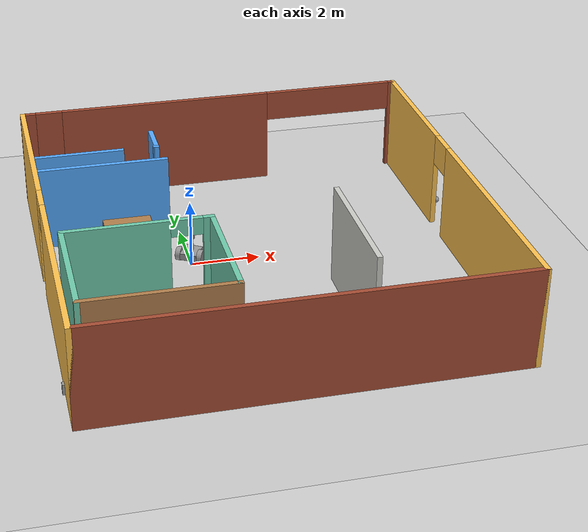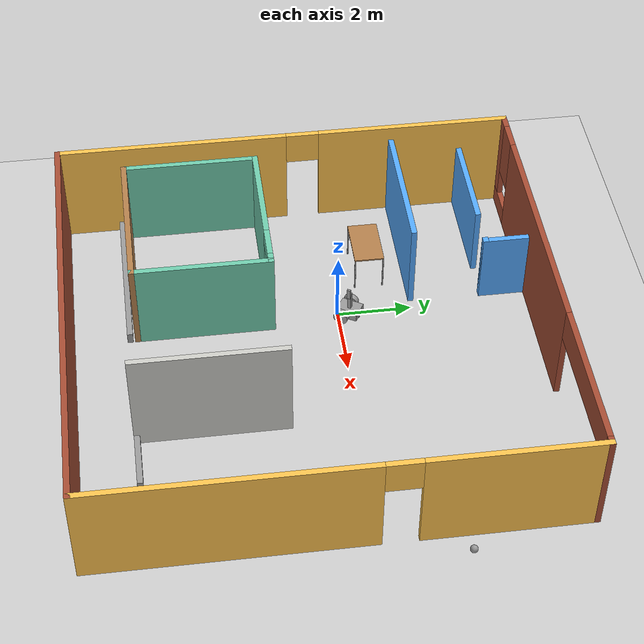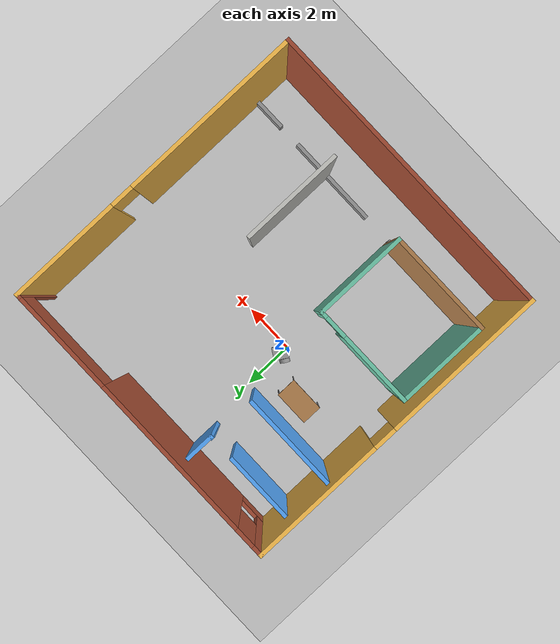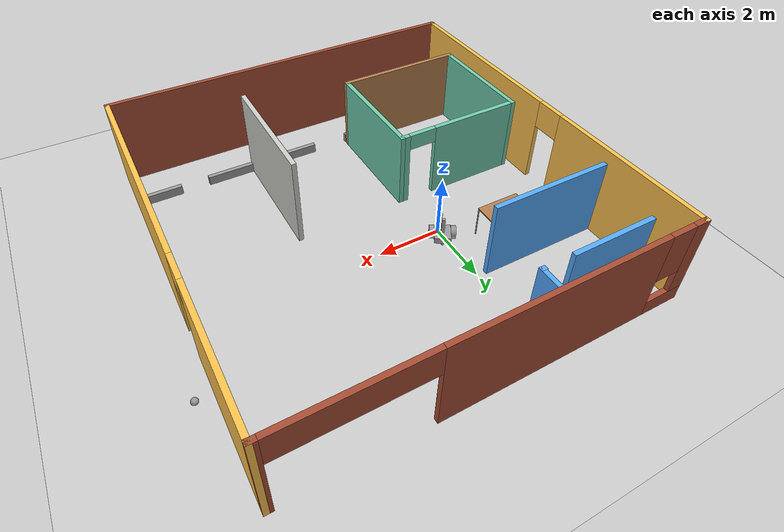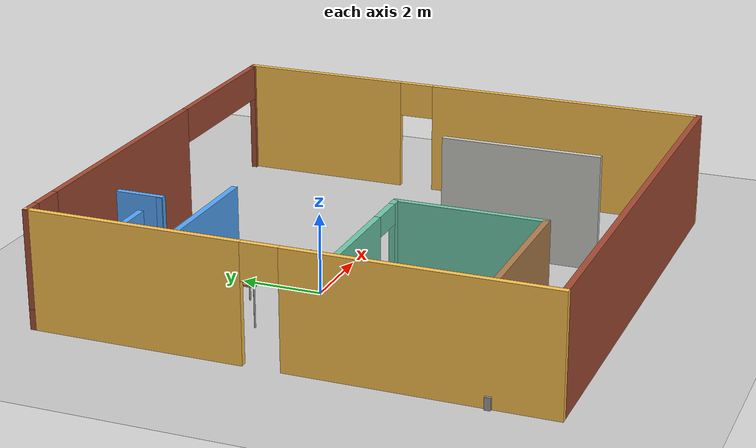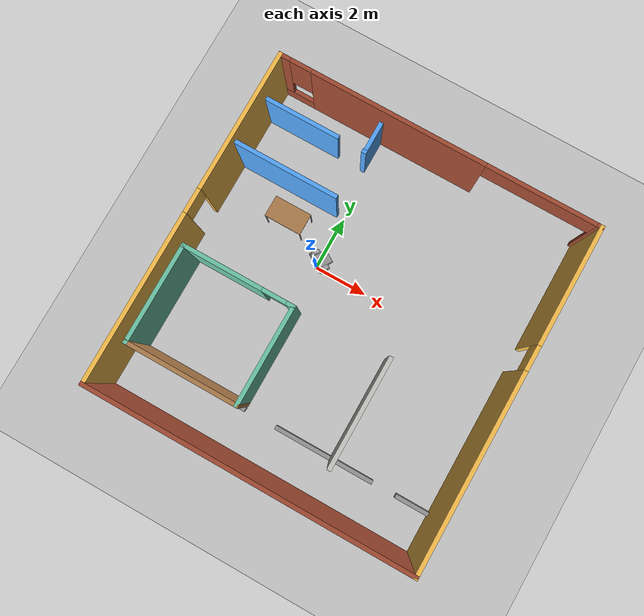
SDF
<sdf version="1.6">
 <world name="default">
  <plugin name="world_plugin" filename="libworld_plugin.so"/>
  <light name="sun" type="directional">
   <pose>0 0 10 0 -0 0</pose>
   <diffuse>0.8 0.8 0.8 1</diffuse>
   <specular>0.1 0.1 0.1 1</specular>
   <attenuation>
    <range>1000</range>
    <constant>0.9</constant>
    <linear>0.01</linear>
    <quadratic>0.001</quadratic>
   </attenuation>
   <direction>-0.5 0.5 -1</direction>
  </light>
  <model name="ground_plane">
   <static>1</static>
   <link name="link">
    <collision name="collision">
     <geometry><plane><normal>0 0 1</normal><size>100 100</size></plane></geometry>
     <surface><friction><ode><mu>100</mu><mu2>50</mu2></ode></friction></surface>
    </collision>
    <visual name="visual">
     <cast_shadows>0</cast_shadows>
     <geometry><plane><normal>0 0 1</normal><size>100 100</size></plane></geometry>
     <material>
      <script><uri>file://media/materials/scripts/gazebo.material</uri><name>Gazebo/Grey</name></script>
     </material>
    </visual>
   </link>
  </model>
  <gravity>0 0 -9.8</gravity>
  <magnetic_field>6e-06 2.3e-05 -4.2e-05</magnetic_field>
  <atmosphere type="adiabatic"/>
  <physics name="default_physics" default="0" type="ode">
   <max_step_size>0.001</max_step_size>
   <real_time_factor>1</real_time_factor>
   <real_time_update_rate>1000</real_time_update_rate>
  </physics>
  <scene><ambient>0.4 0.4 0.4 1</ambient><background>0.7 0.7 0.7 1</background><shadows>1</shadows></scene>
  <spherical_coordinates>
   <surface_model>EARTH_WGS84</surface_model>
   <latitude_deg>0</latitude_deg>
   <longitude_deg>0</longitude_deg>
   <elevation>0</elevation>
   <heading_deg>0</heading_deg>
  </spherical_coordinates>
  <model name="project_building">
   <pose>1.69629 -0.958851 0 0 -0 0</pose>
   <link name="Wall_0">
    <pose>-5.891 0 0 0 0 -1.5708</pose>
    <visual name="Wall_0_Visual_0">
     <pose>-3.61135 0 1.45 0 -0 0</pose>
     <geometry><box><size>5.2773 0.15 2.9</size></box></geometry>
     <material>
      <script><uri>file://media/materials/scripts/gazebo.material</uri><name>Gazebo/Grey</name></script>
      <ambient>1 0.764706 0.305882 1</ambient>
     </material>
    </visual>
    <collision name="Wall_0_Collision_0">
     <geometry><box><size>5.2773 0.15 2.9</size></box></geometry>
     <pose>-3.61135 0 1.45 0 -0 0</pose>
    </collision>
    <visual name="Wall_0_Visual_1">
     <pose>3.08865 0 1.45 0 -0 0</pose>
     <geometry><box><size>6.3227 0.15 2.9</size></box></geometry>
     <material>
      <script><uri>file://media/materials/scripts/gazebo.material</uri><name>Gazebo/Grey</name></script>
      <ambient>1 0.764706 0.305882 1</ambient>
     </material>
    </visual>
    <collision name="Wall_0_Collision_1">
     <geometry><box><size>6.3227 0.15 2.9</size></box></geometry>
     <pose>3.08865 0 1.45 0 -0 0</pose>
    </collision>
    <visual name="Wall_0_Visual_2">
     <pose>-0.522696 0 2.45 0 -0 0</pose>
     <geometry><box><size>0.9 0.15 0.9</size></box></geometry>
     <material>
      <script><uri>file://media/materials/scripts/gazebo.material</uri><name>Gazebo/Grey</name></script>
      <ambient>1 0.764706 0.305882 1</ambient>
     </material>
    </visual>
    <collision name="Wall_0_Collision_2">
     <geometry><box><size>0.9 0.15 0.9</size></box></geometry>
     <pose>-0.522696 0 2.45 0 -0 0</pose>
    </collision>
   </link>
   <link name="Wall_1">
    <collision name="Wall_1_Collision">
     <geometry><box><size>12 0.15 2.9</size></box></geometry>
     <pose>0 0 1.45 0 -0 0</pose>
    </collision>
    <visual name="Wall_1_Visual">
     <pose>0 0 1.45 0 -0 0</pose>
     <geometry><box><size>12 0.15 2.9</size></box></geometry>
     <material>
      <script><uri>file://media/materials/scripts/gazebo.material</uri><name>Gazebo/Bricks</name></script>
      <ambient>1 0.764706 0.305882 1</ambient>
     </material>
    </visual>
    <pose>0.034 -6.175 0 0 -0 0</pose>
   </link>
   <link name="Wall_10">
    <pose>-3.46528 -0.832081 0 0 -0 0</pose>
    <visual name="Wall_10_Visual_0">
     <pose>-0.615 0 1.25 0 -0 0</pose>
     <geometry><box><size>3.02 0.15 2.5</size></box></geometry>
     <material>
      <script><uri>file://media/materials/scripts/gazebo.material</uri><name>Gazebo/Grey</name></script>
      <ambient>0.435294 0.796078 0.67451 1</ambient>
     </material>
    </visual>
    <collision name="Wall_10_Collision_0">
     <geometry><box><size>3.02 0.15 2.5</size></box></geometry>
     <pose>-0.615 0 1.25 0 -0 0</pose>
    </collision>
    <visual name="Wall_10_Visual_1">
     <pose>1.96 0 1.25 0 -0 0</pose>
     <geometry><box><size>0.329999 0.15 2.5</size></box></geometry>
     <material>
      <script><uri>file://media/materials/scripts/gazebo.material</uri><name>Gazebo/Grey</name></script>
      <ambient>0.435294 0.796078 0.67451 1</ambient>
     </material>
    </visual>
    <collision name="Wall_10_Collision_1">
     <geometry><box><size>0.329999 0.15 2.5</size></box></geometry>
     <pose>1.96 0 1.25 0 -0 0</pose>
    </collision>
    <visual name="Wall_10_Visual_2">
     <pose>1.345 0 2.25 0 -0 0</pose>
     <geometry><box><size>0.9 0.15 0.5</size></box></geometry>
     <material>
      <script><uri>file://media/materials/scripts/gazebo.material</uri><name>Gazebo/Grey</name></script>
      <ambient>0.435294 0.796078 0.67451 1</ambient>
     </material>
    </visual>
    <collision name="Wall_10_Collision_2">
     <geometry><box><size>0.9 0.15 0.5</size></box></geometry>
     <pose>1.345 0 2.25 0 -0 0</pose>
    </collision>
   </link>
   <link name="Wall_11">
    <collision name="Wall_11_Collision">
     <geometry><box><size>3.75 0.15 2.5</size></box></geometry>
     <pose>0 0 1.25 0 -0 0</pose>
    </collision>
    <visual name="Wall_11_Visual">
     <pose>0 0 1.25 0 -0 0</pose>
     <geometry><box><size>3.75 0.15 2.5</size></box></geometry>
     <material>
      <script><uri>file://media/materials/scripts/gazebo.material</uri><name>Gazebo/Grey</name></script>
      <ambient>0.435294 0.796078 0.67451 1</ambient>
     </material>
    </visual>
    <pose>-1.41528 -2.63208 0 0 0 -1.5708</pose>
   </link>
   <link name="Wall_12">
    <collision name="Wall_12_Collision">
     <geometry><box><size>4.25 0.15 2.5</size></box></geometry>
     <pose>0 0 1.25 0 -0 0</pose>
    </collision>
    <visual name="Wall_12_Visual">
     <pose>0 0 1.25 0 -0 0</pose>
     <geometry><box><size>4.25 0.15 2.5</size></box></geometry>
     <material>
      <script><uri>file://media/materials/scripts/gazebo.material</uri><name>Gazebo/Wood</name></script>
      <ambient>0.435294 0.796078 0.67451 1</ambient>
     </material>
    </visual>
    <pose>-3.46528 -4.43208 0 0 -0 3.14159</pose>
   </link>
   <link name="Wall_14">
    <collision name="Wall_14_Collision">
     <geometry><box><size>4 0.15 2.9</size></box></geometry>
     <pose>0 0 1.45 0 -0 0</pose>
    </collision>
    <visual name="Wall_14_Visual">
     <pose>0 0 1.45 0 -0 0</pose>
     <geometry><box><size>4 0.15 2.9</size></box></geometry>
     <material>
      <script><uri>file://media/materials/scripts/gazebo.material</uri><name>Gazebo/CeilingTiled</name></script>
      <ambient>0.333333 0.666667 1 1</ambient>
     </material>
    </visual>
    <pose>2.097 -2.712 0 0 -0 1.5708</pose>
   </link>
   <link name="Wall_17">
    <collision name="Wall_17_Collision">
     <geometry><box><size>4 0.15 2.5</size></box></geometry>
     <pose>0 0 1.25 0 -0 0</pose>
    </collision>
    <visual name="Wall_17_Visual">
     <pose>0 0 1.25 0 -0 0</pose>
     <geometry><box><size>4 0.15 2.5</size></box></geometry>
     <material>
      <script><uri>file://media/materials/scripts/gazebo.material</uri><name>Gazebo/Grey</name></script>
      <ambient>0.333333 0.666667 1 1</ambient>
     </material>
    </visual>
    <pose>-3.95814 2.99601 0 0 -0 0</pose>
   </link>
   <link name="Wall_19">
    <pose>-3.912 4.939 0 0 -0 0</pose>
    <visual name="Wall_19_Visual_0">
     <pose>-0.54194 0 1 0 -0 0</pose>
     <geometry><box><size>2.91612 0.15 2</size></box></geometry>
     <material>
      <script><uri>file://media/materials/scripts/gazebo.material</uri><name>Gazebo/Grey</name></script>
      <ambient>0.333333 0.666667 1 1</ambient>
     </material>
    </visual>
    <collision name="Wall_19_Collision_0">
     <geometry><box><size>2.91612 0.15 2</size></box></geometry>
     <pose>-0.54194 0 1 0 -0 0</pose>
    </collision>
    <visual name="Wall_19_Visual_1">
     <pose>1.90806 0 1 0 -0 0</pose>
     <geometry><box><size>0.18388 0.15 2</size></box></geometry>
     <material>
      <script><uri>file://media/materials/scripts/gazebo.material</uri><name>Gazebo/Grey</name></script>
      <ambient>0.333333 0.666667 1 1</ambient>
     </material>
    </visual>
    <collision name="Wall_19_Collision_1">
     <geometry><box><size>0.18388 0.15 2</size></box></geometry>
     <pose>1.90806 0 1 0 -0 0</pose>
    </collision>
   </link>
   <link name="Wall_2">
    <pose>5.959 0 0 0 -0 1.5708</pose>
    <visual name="Wall_2_Visual_0">
     <pose>-2.64975 0 1.45 0 -0 0</pose>
     <geometry><box><size>7.2005 0.15 2.9</size></box></geometry>
     <material>
      <script><uri>file://media/materials/scripts/gazebo.material</uri><name>Gazebo/Grey</name></script>
      <ambient>1 0.764706 0.305882 1</ambient>
     </material>
    </visual>
    <collision name="Wall_2_Collision_0">
     <geometry><box><size>7.2005 0.15 2.9</size></box></geometry>
     <pose>-2.64975 0 1.45 0 -0 0</pose>
    </collision>
    <visual name="Wall_2_Visual_1">
     <pose>4.05025 0 1.45 0 -0 0</pose>
     <geometry><box><size>4.3995 0.15 2.9</size></box></geometry>
     <material>
      <script><uri>file://media/materials/scripts/gazebo.material</uri><name>Gazebo/Grey</name></script>
      <ambient>1 0.764706 0.305882 1</ambient>
     </material>
    </visual>
    <collision name="Wall_2_Collision_1">
     <geometry><box><size>4.3995 0.15 2.9</size></box></geometry>
     <pose>4.05025 0 1.45 0 -0 0</pose>
    </collision>
    <visual name="Wall_2_Visual_2">
     <pose>1.4005 0 2.45 0 -0 0</pose>
     <geometry><box><size>0.9 0.15 0.9</size></box></geometry>
     <material>
      <script><uri>file://media/materials/scripts/gazebo.material</uri><name>Gazebo/Grey</name></script>
      <ambient>1 0.764706 0.305882 1</ambient>
     </material>
    </visual>
    <collision name="Wall_2_Collision_2">
     <geometry><box><size>0.9 0.15 0.9</size></box></geometry>
     <pose>1.4005 0 2.45 0 -0 0</pose>
    </collision>
   </link>
   <link name="Wall_20">
    <collision name="Wall_20_Collision">
     <geometry><box><size>1.25 0.15 2</size></box></geometry>
     <pose>0 0 1 0 -0 0</pose>
    </collision>
    <visual name="Wall_20_Visual">
     <pose>0 0 1 0 -0 0</pose>
     <geometry><box><size>1.25 0.15 2</size></box></geometry>
     <material>
      <script><uri>file://media/materials/scripts/gazebo.material</uri><name>Gazebo/Grey</name></script>
      <ambient>0.333333 0.666667 1 1</ambient>
     </material>
    </visual>
    <pose>-1.987 5.489 0 0 -0 1.5708</pose>
   </link>
   <link name="Wall_22">
    <pose>-0.034 -4.632 0 0 -0 0</pose>
    <visual name="Wall_22_Visual_0">
     <pose>-3.65467 0 0.15 0 -0 0</pose>
     <geometry><box><size>4.69066 0.15 0.3</size></box></geometry>
     <material>
      <script><uri>file://media/materials/scripts/gazebo.material</uri><name>Gazebo/Grey</name></script>
      <ambient>0.372549 0.376471 0.388235 1</ambient>
     </material>
    </visual>
    <collision name="Wall_22_Collision_0">
     <geometry><box><size>4.69066 0.15 0.3</size></box></geometry>
     <pose>-3.65467 0 0.15 0 -0 0</pose>
    </collision>
    <visual name="Wall_22_Visual_1">
     <pose>1.81175 0 0.15 0 -0 0</pose>
     <geometry><box><size>3.84218 0.15 0.3</size></box></geometry>
     <material>
      <script><uri>file://media/materials/scripts/gazebo.material</uri><name>Gazebo/Grey</name></script>
      <ambient>0.372549 0.376471 0.388235 1</ambient>
     </material>
    </visual>
    <collision name="Wall_22_Collision_1">
     <geometry><box><size>3.84218 0.15 0.3</size></box></geometry>
     <pose>1.81175 0 0.15 0 -0 0</pose>
    </collision>
    <visual name="Wall_22_Visual_2">
     <pose>5.31642 0 0.15 0 -0 0</pose>
     <geometry><box><size>1.36715 0.15 0.3</size></box></geometry>
     <material>
      <script><uri>file://media/materials/scripts/gazebo.material</uri><name>Gazebo/Grey</name></script>
      <ambient>0.372549 0.376471 0.388235 1</ambient>
     </material>
    </visual>
    <collision name="Wall_22_Collision_2">
     <geometry><box><size>1.36715 0.15 0.3</size></box></geometry>
     <pose>5.31642 0 0.15 0 -0 0</pose>
    </collision>
   </link>
   <link name="Wall_3">
    <pose>0.034 6.175 0 0 -0 3.14159</pose>
    <visual name="Wall_3_Visual_0">
     <pose>-5.87548 0 1.45 0 -0 0</pose>
     <geometry><box><size>0.249032 0.15 2.9</size></box></geometry>
     <material>
      <script><uri>file://media/materials/scripts/gazebo.material</uri><name>Gazebo/Bricks</name></script>
      <ambient>1 0.764706 0.305882 1</ambient>
     </material>
    </visual>
    <collision name="Wall_3_Collision_0">
     <geometry><box><size>0.249032 0.15 2.9</size></box></geometry>
     <pose>-5.87548 0 1.45 0 -0 0</pose>
    </collision>
    <visual name="Wall_3_Visual_1">
     <pose>1.49127 0 1.45 0 -0 0</pose>
     <geometry><box><size>6.48447 0.15 2.9</size></box></geometry>
     <material>
      <script><uri>file://media/materials/scripts/gazebo.material</uri><name>Gazebo/Bricks</name></script>
      <ambient>1 0.764706 0.305882 1</ambient>
     </material>
    </visual>
    <collision name="Wall_3_Collision_1">
     <geometry><box><size>6.48447 0.15 2.9</size></box></geometry>
     <pose>1.49127 0 1.45 0 -0 0</pose>
    </collision>
    <visual name="Wall_3_Visual_2">
     <pose>5.36675 0 0.25 0 -0 0</pose>
     <geometry><box><size>1.2665 0.15 0.5</size></box></geometry>
     <material>
      <script><uri>file://media/materials/scripts/gazebo.material</uri><name>Gazebo/Bricks</name></script>
      <ambient>1 0.764706 0.305882 1</ambient>
     </material>
    </visual>
    <collision name="Wall_3_Collision_2">
     <geometry><box><size>1.2665 0.15 0.5</size></box></geometry>
     <pose>5.36675 0 0.25 0 -0 0</pose>
    </collision>
    <visual name="Wall_3_Visual_3">
     <pose>5.76675 0 1.7 0 -0 0</pose>
     <geometry><box><size>0.466501 0.15 2.4</size></box></geometry>
     <material>
      <script><uri>file://media/materials/scripts/gazebo.material</uri><name>Gazebo/Bricks</name></script>
      <ambient>1 0.764706 0.305882 1</ambient>
     </material>
    </visual>
    <collision name="Wall_3_Collision_3">
     <geometry><box><size>0.466501 0.15 2.4</size></box></geometry>
     <pose>5.76675 0 1.7 0 -0 0</pose>
    </collision>
    <visual name="Wall_3_Visual_4">
     <pose>5.1335 0 2.1 0 -0 0</pose>
     <geometry><box><size>0.8 0.15 1.6</size></box></geometry>
     <material>
      <script><uri>file://media/materials/scripts/gazebo.material</uri><name>Gazebo/Bricks</name></script>
      <ambient>1 0.764706 0.305882 1</ambient>
     </material>
    </visual>
    <collision name="Wall_3_Collision_4">
     <geometry><box><size>0.8 0.15 1.6</size></box></geometry>
     <pose>5.1335 0 2.1 0 -0 0</pose>
    </collision>
    <visual name="Wall_3_Visual_5">
     <pose>-3.75097 0 2.45 0 -0 0</pose>
     <geometry><box><size>4 0.15 0.9</size></box></geometry>
     <material>
      <script><uri>file://media/materials/scripts/gazebo.material</uri><name>Gazebo/Bricks</name></script>
      <ambient>1 0.764706 0.305882 1</ambient>
     </material>
    </visual>
    <collision name="Wall_3_Collision_5">
     <geometry><box><size>4 0.15 0.9</size></box></geometry>
     <pose>-3.75097 0 2.45 0 -0 0</pose>
    </collision>
   </link>
   <link name="Wall_9">
    <collision name="Wall_9_Collision">
     <geometry><box><size>3.75 0.15 2.5</size></box></geometry>
     <pose>0 0 1.25 0 -0 0</pose>
    </collision>
    <visual name="Wall_9_Visual">
     <pose>0 0 1.25 0 -0 0</pose>
     <geometry><box><size>3.75 0.15 2.5</size></box></geometry>
     <material>
      <script><uri>file://media/materials/scripts/gazebo.material</uri><name>Gazebo/Grey</name></script>
      <ambient>0.435294 0.796078 0.67451 1</ambient>
     </material>
    </visual>
    <pose>-5.51528 -2.63208 0 0 -0 1.5708</pose>
   </link>
   <static>1</static>
  </model>
  <model name="project_robot">
   <link name="link_0">
    <pose>-0.0125 -0.008336 -0.141667 0 -0 0</pose>
    <inertial>
     <mass>1</mass>
     <inertia>
      <ixx>0.166667</ixx>
      <ixy>0</ixy>
      <ixz>0</ixz>
      <iyy>0.166667</iyy>
      <iyz>0</iyz>
      <izz>0.166667</izz>
     </inertia>
    </inertial>
    <visual name="visual">
     <geometry><box><size>0.5 0.6 0.2</size></box></geometry>
     <material>
      <lighting>1</lighting>
      <script><uri>file://media/materials/scripts/gazebo.material</uri><name>Gazebo/Grey</name></script>
      <ambient>0.3 0.3 0.3 1</ambient>
      <diffuse>0.7 0.7 0.7 1</diffuse>
      <specular>0.01 0.01 0.01 1</specular>
      <emissive>0 0 0 1</emissive>
      <shader type="vertex"><normal_map>__default__</normal_map></shader>
     </material>
    </visual>
    <collision name="collision">
     <geometry><box><size>0.5 0.6 0.2</size></box></geometry>
     <surface>
      <friction>
       <ode><mu>1</mu><mu2>1</mu2><fdir1>0 0 0</fdir1><slip1>0</slip1><slip2>0</slip2></ode>
       <torsional>
        <coefficient>1</coefficient>
        <patch_radius>0</patch_radius>
        <surface_radius>0</surface_radius>
        <use_patch_radius>1</use_patch_radius>
        <ode><slip>0</slip></ode>
       </torsional>
      </friction>
      <bounce><restitution_coefficient>0</restitution_coefficient><threshold>1e+06</threshold></bounce>
      <contact>
       <collide_without_contact>0</collide_without_contact>
       <collide_without_contact_bitmask>1</collide_without_contact_bitmask>
       <collide_bitmask>1</collide_bitmask>
       <ode>
        <soft_cfm>0</soft_cfm>
        <soft_erp>0.2</soft_erp>
        <kp>1e+13</kp>
        <kd>1</kd>
        <max_vel>0.01</max_vel>
        <min_depth>0</min_depth>
       </ode>
       <bullet>
        <split_impulse>1</split_impulse>
        <split_impulse_penetration_threshold>-0.01</split_impulse_penetration_threshold>
        <soft_cfm>0</soft_cfm>
        <soft_erp>0.2</soft_erp>
        <kp>1e+13</kp>
        <kd>1</kd>
       </bullet>
      </contact>
     </surface>
    </collision>
   </link>
   <link name="link_1_clone">
    <pose>-0.337539 -0.108328 -0.141667 1.5707 0 1.5707</pose>
    <inertial>
     <mass>1</mass>
     <inertia><ixx>0.145833</ixx><ixy>0</ixy><ixz>0</ixz><iyy>0.145833</iyy><iyz>0</iyz><izz>0.125</izz></inertia>
    </inertial>
    <visual name="visual">
     <geometry><cylinder><radius>0.2</radius><length>0.15</length></cylinder></geometry>
     <material>
      <lighting>1</lighting>
      <script><uri>file://media/materials/scripts/gazebo.material</uri><name>Gazebo/Grey</name></script>
      <ambient>0.3 0.3 0.3 1</ambient>
      <diffuse>0.7 0.7 0.7 1</diffuse>
      <specular>0.01 0.01 0.01 1</specular>
      <emissive>0 0 0 1</emissive>
      <shader type="vertex"><normal_map>__default__</normal_map></shader>
     </material>
    </visual>
    <collision name="collision">
     <geometry><cylinder><radius>0.2</radius><length>0.15</length></cylinder></geometry>
     <surface>
      <friction>
       <ode><mu>1</mu><mu2>1</mu2><fdir1>0 0 0</fdir1><slip1>0</slip1><slip2>0</slip2></ode>
       <torsional>
        <coefficient>1</coefficient>
        <patch_radius>0</patch_radius>
        <surface_radius>0</surface_radius>
        <use_patch_radius>1</use_patch_radius>
        <ode><slip>0</slip></ode>
       </torsional>
      </friction>
      <bounce><restitution_coefficient>0</restitution_coefficient><threshold>1e+06</threshold></bounce>
      <contact>
       <collide_without_contact>0</collide_without_contact>
       <collide_without_contact_bitmask>1</collide_without_contact_bitmask>
       <collide_bitmask>1</collide_bitmask>
       <ode>
        <soft_cfm>0</soft_cfm>
        <soft_erp>0.2</soft_erp>
        <kp>1e+13</kp>
        <kd>1</kd>
        <max_vel>0.01</max_vel>
        <min_depth>0</min_depth>
       </ode>
       <bullet>
        <split_impulse>1</split_impulse>
        <split_impulse_penetration_threshold>-0.01</split_impulse_penetration_threshold>
        <soft_cfm>0</soft_cfm>
        <soft_erp>0.2</soft_erp>
        <kp>1e+13</kp>
        <kd>1</kd>
       </bullet>
      </contact>
     </surface>
    </collision>
   </link>
   <link name="link_1_clone_clone">
    <pose>0.312539 -0.108328 -0.141667 1.5707 0 1.5707</pose>
    <inertial>
     <mass>1</mass>
     <inertia><ixx>0.145833</ixx><ixy>0</ixy><ixz>0</ixz><iyy>0.145833</iyy><iyz>0</iyz><izz>0.125</izz></inertia>
    </inertial>
    <visual name="visual">
     <geometry><cylinder><radius>0.2</radius><length>0.15</length></cylinder></geometry>
     <material>
      <lighting>1</lighting>
      <script><uri>file://media/materials/scripts/gazebo.material</uri><name>Gazebo/Grey</name></script>
      <ambient>0.3 0.3 0.3 1</ambient>
      <diffuse>0.7 0.7 0.7 1</diffuse>
      <specular>0.01 0.01 0.01 1</specular>
      <emissive>0 0 0 1</emissive>
      <shader type="vertex"><normal_map>__default__</normal_map></shader>
     </material>
    </visual>
    <collision name="collision">
     <geometry><cylinder><radius>0.2</radius><length>0.15</length></cylinder></geometry>
     <surface>
      <friction>
       <ode><mu>1</mu><mu2>1</mu2><fdir1>0 0 0</fdir1><slip1>0</slip1><slip2>0</slip2></ode>
       <torsional>
        <coefficient>1</coefficient>
        <patch_radius>0</patch_radius>
        <surface_radius>0</surface_radius>
        <use_patch_radius>1</use_patch_radius>
        <ode><slip>0</slip></ode>
       </torsional>
      </friction>
      <bounce><restitution_coefficient>0</restitution_coefficient><threshold>1e+06</threshold></bounce>
      <contact>
       <collide_without_contact>0</collide_without_contact>
       <collide_without_contact_bitmask>1</collide_without_contact_bitmask>
       <collide_bitmask>1</collide_bitmask>
       <ode>
        <soft_cfm>0</soft_cfm>
        <soft_erp>0.2</soft_erp>
        <kp>1e+13</kp>
        <kd>1</kd>
        <max_vel>0.01</max_vel>
        <min_depth>0</min_depth>
       </ode>
       <bullet>
        <split_impulse>1</split_impulse>
        <split_impulse_penetration_threshold>-0.01</split_impulse_penetration_threshold>
        <soft_cfm>0</soft_cfm>
        <soft_erp>0.2</soft_erp>
        <kp>1e+13</kp>
        <kd>1</kd>
       </bullet>
      </contact>
     </surface>
    </collision>
   </link>
   <link name="link_2">
    <pose>-0.0125 0.241664 -0.291667 0 -0 0</pose>
    <inertial>
     <mass>1</mass>
     <inertia><ixx>0.1</ixx><ixy>0</ixy><ixz>0</ixz><iyy>0.1</iyy><iyz>0</iyz><izz>0.1</izz></inertia>
    </inertial>
    <visual name="visual">
     <geometry><sphere><radius>0.05</radius></sphere></geometry>
     <material>
      <lighting>1</lighting>
      <script><uri>file://media/materials/scripts/gazebo.material</uri><name>Gazebo/Grey</name></script>
      <ambient>0.3 0.3 0.3 1</ambient>
      <diffuse>0.7 0.7 0.7 1</diffuse>
      <specular>0.01 0.01 0.01 1</specular>
      <emissive>0 0 0 1</emissive>
      <shader type="vertex"><normal_map>__default__</normal_map></shader>
     </material>
    </visual>
    <collision name="collision">
     <geometry><sphere><radius>0.05</radius></sphere></geometry>
     <surface>
      <friction>
       <ode><mu>1</mu><mu2>1</mu2><fdir1>0 0 0</fdir1><slip1>0</slip1><slip2>0</slip2></ode>
       <torsional>
        <coefficient>1</coefficient>
        <patch_radius>0</patch_radius>
        <surface_radius>0</surface_radius>
        <use_patch_radius>1</use_patch_radius>
        <ode><slip>0</slip></ode>
       </torsional>
      </friction>
      <bounce><restitution_coefficient>0</restitution_coefficient><threshold>1e+06</threshold></bounce>
      <contact>
       <collide_without_contact>0</collide_without_contact>
       <collide_without_contact_bitmask>1</collide_without_contact_bitmask>
       <collide_bitmask>1</collide_bitmask>
       <ode>
        <soft_cfm>0</soft_cfm>
        <soft_erp>0.2</soft_erp>
        <kp>1e+13</kp>
        <kd>1</kd>
        <max_vel>0.01</max_vel>
        <min_depth>0</min_depth>
       </ode>
       <bullet>
        <split_impulse>1</split_impulse>
        <split_impulse_penetration_threshold>-0.01</split_impulse_penetration_threshold>
        <soft_cfm>0</soft_cfm>
        <soft_erp>0.2</soft_erp>
        <kp>1e+13</kp>
        <kd>1</kd>
       </bullet>
      </contact>
     </surface>
    </collision>
   </link>
   <link name="link_3">
    <pose>-0.0125 -0.008336 0.208333 0 -0 0</pose>
    <inertial>
     <mass>1</mass>
     <inertia>
      <ixx>0.166667</ixx>
      <ixy>0</ixy>
      <ixz>0</ixz>
      <iyy>0.166667</iyy>
      <iyz>0</iyz>
      <izz>0.166667</izz>
     </inertia>
    </inertial>
    <visual name="visual">
     <geometry><box><size>0.1 0.1 0.5</size></box></geometry>
     <material>
      <lighting>1</lighting>
      <script><uri>file://media/materials/scripts/gazebo.material</uri><name>Gazebo/Grey</name></script>
      <ambient>0.3 0.3 0.3 1</ambient>
      <diffuse>0.7 0.7 0.7 1</diffuse>
      <specular>0.01 0.01 0.01 1</specular>
      <emissive>0 0 0 1</emissive>
      <shader type="vertex"><normal_map>__default__</normal_map></shader>
     </material>
    </visual>
    <collision name="collision">
     <geometry><box><size>0.1 0.1 0.5</size></box></geometry>
     <surface>
      <friction>
       <ode><mu>1</mu><mu2>1</mu2><fdir1>0 0 0</fdir1><slip1>0</slip1><slip2>0</slip2></ode>
       <torsional>
        <coefficient>1</coefficient>
        <patch_radius>0</patch_radius>
        <surface_radius>0</surface_radius>
        <use_patch_radius>1</use_patch_radius>
        <ode><slip>0</slip></ode>
       </torsional>
      </friction>
      <bounce><restitution_coefficient>0</restitution_coefficient><threshold>1e+06</threshold></bounce>
      <contact>
       <collide_without_contact>0</collide_without_contact>
       <collide_without_contact_bitmask>1</collide_without_contact_bitmask>
       <collide_bitmask>1</collide_bitmask>
       <ode>
        <soft_cfm>0</soft_cfm>
        <soft_erp>0.2</soft_erp>
        <kp>1e+13</kp>
        <kd>1</kd>
        <max_vel>0.01</max_vel>
        <min_depth>0</min_depth>
       </ode>
       <bullet>
        <split_impulse>1</split_impulse>
        <split_impulse_penetration_threshold>-0.01</split_impulse_penetration_threshold>
        <soft_cfm>0</soft_cfm>
        <soft_erp>0.2</soft_erp>
        <kp>1e+13</kp>
        <kd>1</kd>
       </bullet>
      </contact>
     </surface>
    </collision>
   </link>
   <link name="link_3_clone">
    <pose>0.0625 -0.008336 0.508333 0 -0 0</pose>
    <inertial>
     <mass>1</mass>
     <inertia>
      <ixx>0.166667</ixx>
      <ixy>0</ixy>
      <ixz>0</ixz>
      <iyy>0.166667</iyy>
      <iyz>0</iyz>
      <izz>0.166667</izz>
     </inertia>
    </inertial>
    <visual name="visual">
     <geometry><box><size>0.05 0.1 0.3</size></box></geometry>
     <material>
      <lighting>1</lighting>
      <script><uri>file://media/materials/scripts/gazebo.material</uri><name>Gazebo/Grey</name></script>
      <ambient>0.3 0.3 0.3 1</ambient>
      <diffuse>0.7 0.7 0.7 1</diffuse>
      <specular>0.01 0.01 0.01 1</specular>
      <emissive>0 0 0 1</emissive>
      <shader type="vertex"><normal_map>__default__</normal_map></shader>
     </material>
    </visual>
    <collision name="collision">
     <geometry><box><size>0.05 0.1 0.3</size></box></geometry>
     <surface>
      <friction>
       <ode><mu>1</mu><mu2>1</mu2><fdir1>0 0 0</fdir1><slip1>0</slip1><slip2>0</slip2></ode>
       <torsional>
        <coefficient>1</coefficient>
        <patch_radius>0</patch_radius>
        <surface_radius>0</surface_radius>
        <use_patch_radius>1</use_patch_radius>
        <ode><slip>0</slip></ode>
       </torsional>
      </friction>
      <bounce><restitution_coefficient>0</restitution_coefficient><threshold>1e+06</threshold></bounce>
      <contact>
       <collide_without_contact>0</collide_without_contact>
       <collide_without_contact_bitmask>1</collide_without_contact_bitmask>
       <collide_bitmask>1</collide_bitmask>
       <ode>
        <soft_cfm>0</soft_cfm>
        <soft_erp>0.2</soft_erp>
        <kp>1e+13</kp>
        <kd>1</kd>
        <max_vel>0.01</max_vel>
        <min_depth>0</min_depth>
       </ode>
       <bullet>
        <split_impulse>1</split_impulse>
        <split_impulse_penetration_threshold>-0.01</split_impulse_penetration_threshold>
        <soft_cfm>0</soft_cfm>
        <soft_erp>0.2</soft_erp>
        <kp>1e+13</kp>
        <kd>1</kd>
       </bullet>
      </contact>
     </surface>
    </collision>
   </link>
   <joint name="link_0_JOINT_2" type="revolute">
    <parent>link_0</parent>
    <child>link_1_clone</child>
    <axis>
     <xyz>0 0 -1</xyz>
     <use_parent_model_frame>0</use_parent_model_frame>
     <limit>
      <lower>-1.79769e+308</lower>
      <upper>1.79769e+308</upper>
      <effort>-1</effort>
      <velocity>-1</velocity>
     </limit>
     <dynamics>
      <spring_reference>0</spring_reference>
      <spring_stiffness>0</spring_stiffness>
      <damping>0</damping>
     </dynamics>
    </axis>
    <physics>
     <ode><limit><cfm>0</cfm><erp>0.2</erp></limit><suspension><cfm>0</cfm><erp>0.2</erp></suspension></ode>
    </physics>
   </joint>
   <joint name="link_0_JOINT_3" type="revolute">
    <parent>link_0</parent>
    <child>link_1_clone_clone</child>
    <axis>
     <xyz>0 0 1</xyz>
     <use_parent_model_frame>0</use_parent_model_frame>
     <limit>
      <lower>-1.79769e+308</lower>
      <upper>1.79769e+308</upper>
      <effort>-1</effort>
      <velocity>-1</velocity>
     </limit>
     <dynamics>
      <spring_reference>0</spring_reference>
      <spring_stiffness>0</spring_stiffness>
      <damping>0</damping>
     </dynamics>
    </axis>
    <physics>
     <ode><limit><cfm>0</cfm><erp>0.2</erp></limit><suspension><cfm>0</cfm><erp>0.2</erp></suspension></ode>
    </physics>
   </joint>
   <joint name="link_0_JOINT_4" type="ball">
    <parent>link_0</parent>
    <child>link_2</child>
    <physics>
     <ode><limit><cfm>0</cfm><erp>0.2</erp></limit><suspension><cfm>0</cfm><erp>0.2</erp></suspension></ode>
    </physics>
   </joint>
   <joint name="link_0_JOINT_5" type="fixed">
    <parent>link_0</parent>
    <child>link_3</child>
    <physics>
     <ode><limit><cfm>0</cfm><erp>0.2</erp></limit><suspension><cfm>0</cfm><erp>0.2</erp></suspension></ode>
    </physics>
   </joint>
   <joint name="link_3_JOINT_6" type="revolute">
    <parent>link_3</parent>
    <child>link_3_clone</child>
    <pose>0 0 -0.1 0 -0 0</pose>
    <axis>
     <xyz>1 0 0</xyz>
     <use_parent_model_frame>0</use_parent_model_frame>
     <limit>
      <lower>-1.79769e+308</lower>
      <upper>1.79769e+308</upper>
      <effort>-1</effort>
      <velocity>-1</velocity>
     </limit>
     <dynamics>
      <spring_reference>0</spring_reference>
      <spring_stiffness>0</spring_stiffness>
      <damping>0</damping>
     </dynamics>
    </axis>
    <physics>
     <ode><limit><cfm>0</cfm><erp>0.2</erp></limit><suspension><cfm>0</cfm><erp>0.2</erp></suspension></ode>
    </physics>
   </joint>
   <static>0</static>
   <pose>0.074664 0.315525 0.341672 -2.2e-05 -0 -0.543388</pose>
  </model>
  <model name="table">
   <static>0</static>
   <link name="link">
    <collision name="surface">
     <pose>0 0 1 0 -0 0</pose>
     <geometry><box><size>1.5 0.8 0.03</size></box></geometry>
     <surface><friction><ode><mu>0.6</mu><mu2>0.6</mu2></ode></friction></surface>
    </collision>
    <visual name="visual1">
     <pose>0 0 1 0 -0 0</pose>
     <geometry><box><size>1.4 0.8 0.04</size></box></geometry>
     <material>
      <script><uri>file://media/materials/scripts/gazebo.material</uri><name>Gazebo/Wood</name></script>
     </material>
    </visual>
    <collision name="front_left_leg">
     <pose>0.68 0.38 0.5 0 -0 0</pose>
     <geometry><cylinder><radius>0.02</radius><length>1</length></cylinder></geometry>
    </collision>
    <visual name="front_left_leg">
     <pose>0.68 0.38 0.5 0 -0 0</pose>
     <geometry><cylinder><radius>0.02</radius><length>1</length></cylinder></geometry>
     <material>
      <script><uri>file://media/materials/scripts/gazebo.material</uri><name>Gazebo/Grey</name></script>
     </material>
    </visual>
    <collision name="front_right_leg">
     <pose>0.68 -0.38 0.5 0 -0 0</pose>
     <geometry><cylinder><radius>0.02</radius><length>1</length></cylinder></geometry>
    </collision>
    <visual name="front_right_leg">
     <pose>0.68 -0.38 0.5 0 -0 0</pose>
     <geometry><cylinder><radius>0.02</radius><length>1</length></cylinder></geometry>
     <material>
      <script><uri>file://media/materials/scripts/gazebo.material</uri><name>Gazebo/Grey</name></script>
     </material>
    </visual>
    <collision name="back_right_leg">
     <pose>-0.68 -0.38 0.5 0 -0 0</pose>
     <geometry><cylinder><radius>0.02</radius><length>1</length></cylinder></geometry>
    </collision>
    <visual name="back_right_leg">
     <pose>-0.68 -0.38 0.5 0 -0 0</pose>
     <geometry><cylinder><radius>0.02</radius><length>1</length></cylinder></geometry>
     <material>
      <script><uri>file://media/materials/scripts/gazebo.material</uri><name>Gazebo/Grey</name></script>
     </material>
    </visual>
    <collision name="back_left_leg">
     <pose>-0.68 0.38 0.5 0 -0 0</pose>
     <geometry><cylinder><radius>0.02</radius><length>1</length></cylinder></geometry>
    </collision>
    <visual name="back_left_leg">
     <pose>-0.68 0.38 0.5 0 -0 0</pose>
     <geometry><cylinder><radius>0.02</radius><length>1</length></cylinder></geometry>
     <material>
      <script><uri>file://media/materials/scripts/gazebo.material</uri><name>Gazebo/Grey</name></script>
     </material>
    </visual>
    <inertial>
     <inertia><ixx>1</ixx><ixy>0</ixy><ixz>0</ixz><iyy>1</iyy><iyz>0</iyz><izz>1</izz></inertia>
     <mass>1</mass>
    </inertial>
   </link>
   <pose>-1.6511 0.992047 -9e-06 0 -1e-06 0</pose>
  </model>
  <model name="my_ball">
   <link name="link_0">
    <inertial>
     <mass>1</mass>
     <inertia><ixx>0.1</ixx><ixy>0</ixy><ixz>0</ixz><iyy>0.1</iyy><iyz>0</iyz><izz>0.1</izz></inertia>
    </inertial>
    <visual name="visual">
     <geometry><sphere><radius>0.1</radius></sphere></geometry>
     <material>
      <lighting>1</lighting>
      <script><uri>file://media/materials/scripts/gazebo.material</uri><name>Gazebo/Grey</name></script>
      <ambient>1 1 1 1</ambient>
      <diffuse>1 1 1 1</diffuse>
      <specular>1 1 1 1</specular>
      <emissive>1 1 1 1</emissive>
      <shader type="vertex"><normal_map>__default__</normal_map></shader>
     </material>
    </visual>
    <collision name="collision">
     <geometry><sphere><radius>0.1</radius></sphere></geometry>
     <surface>
      <friction>
       <ode><mu>1</mu><mu2>1</mu2><fdir1>0 0 0</fdir1><slip1>0</slip1><slip2>0</slip2></ode>
       <torsional>
        <coefficient>1</coefficient>
        <patch_radius>0</patch_radius>
        <surface_radius>0</surface_radius>
        <use_patch_radius>1</use_patch_radius>
        <ode><slip>0</slip></ode>
       </torsional>
      </friction>
      <bounce><restitution_coefficient>0</restitution_coefficient><threshold>1e+06</threshold></bounce>
      <contact>
       <collide_without_contact>0</collide_without_contact>
       <collide_without_contact_bitmask>1</collide_without_contact_bitmask>
       <collide_bitmask>1</collide_bitmask>
       <ode>
        <soft_cfm>0</soft_cfm>
        <soft_erp>0.2</soft_erp>
        <kp>1e+13</kp>
        <kd>1</kd>
        <max_vel>0.01</max_vel>
        <min_depth>0</min_depth>
       </ode>
       <bullet>
        <split_impulse>1</split_impulse>
        <split_impulse_penetration_threshold>-0.01</split_impulse_penetration_threshold>
        <soft_cfm>0</soft_cfm>
        <soft_erp>0.2</soft_erp>
        <kp>1e+13</kp>
        <kd>1</kd>
       </bullet>
      </contact>
     </surface>
    </collision>
   </link>
   <static>0</static>
   <pose>8.20094 2.11299 0.1 0 -0 0</pose>
  </model>
 </world>
</sdf>
